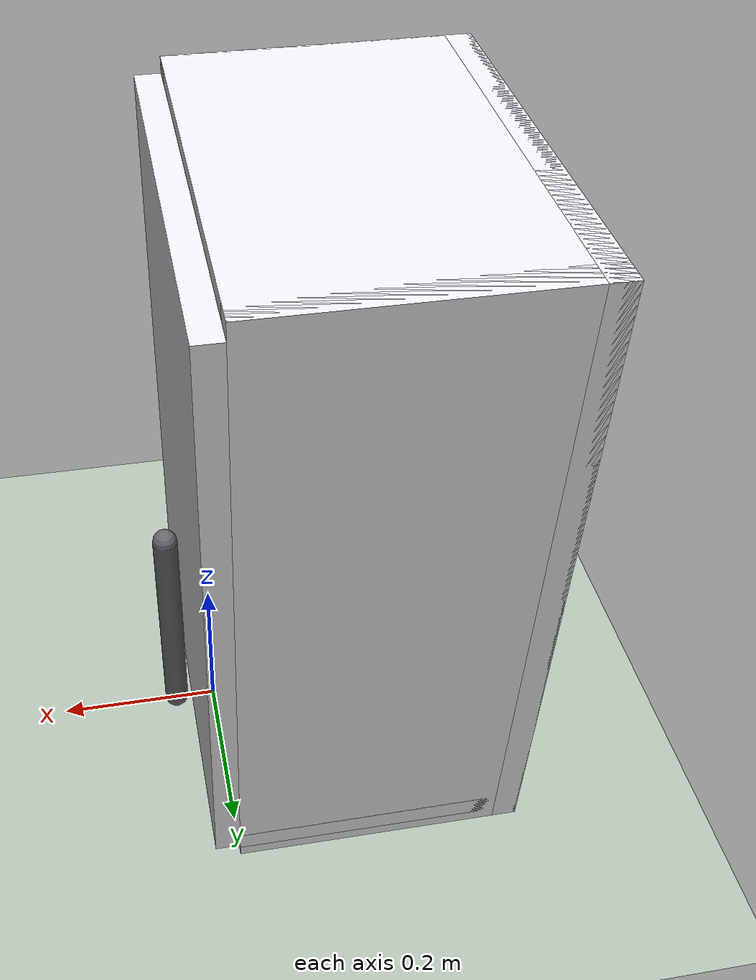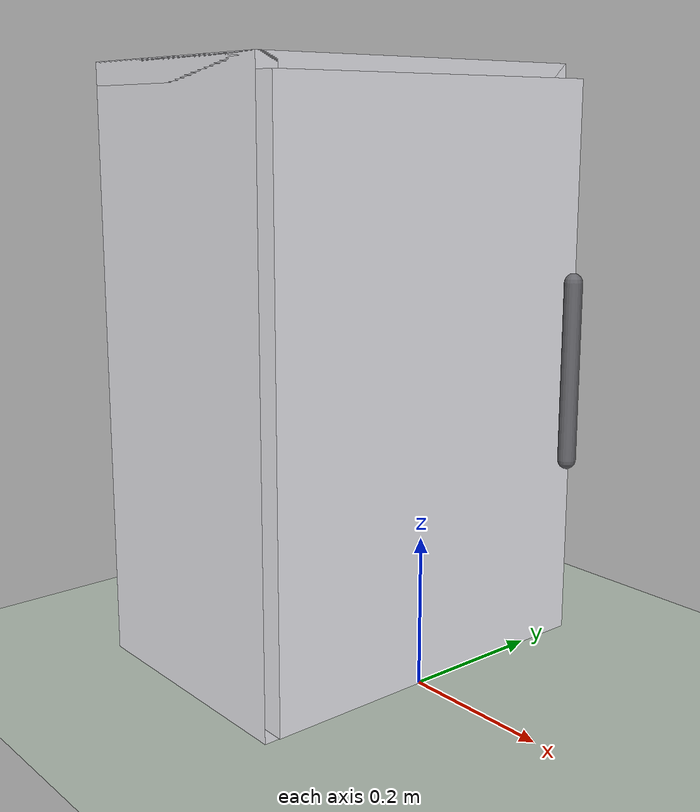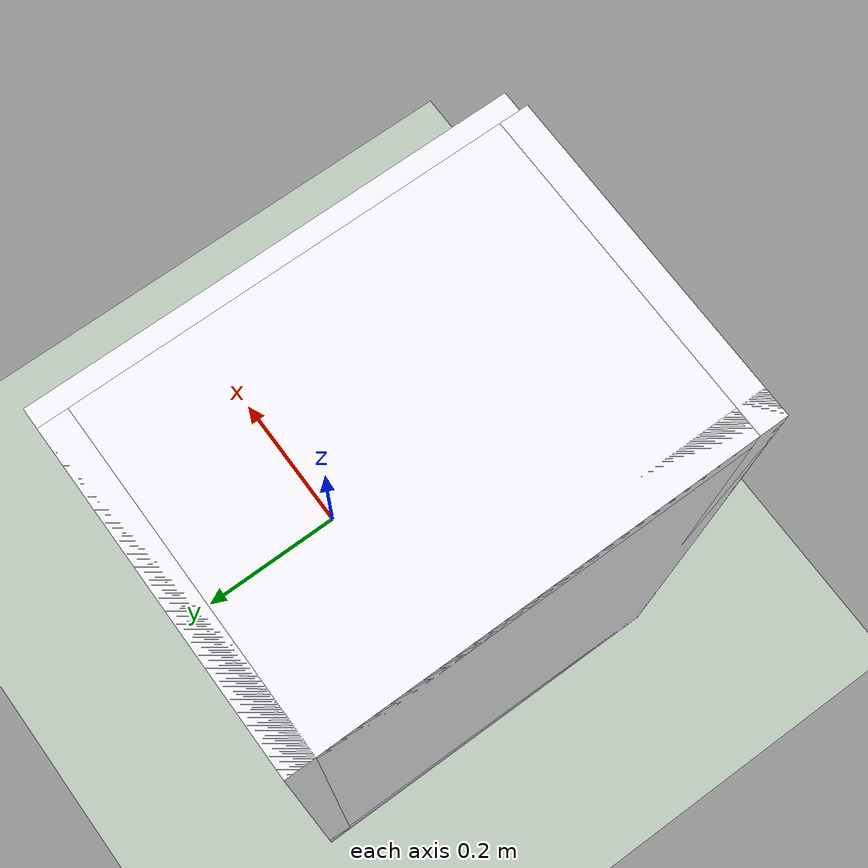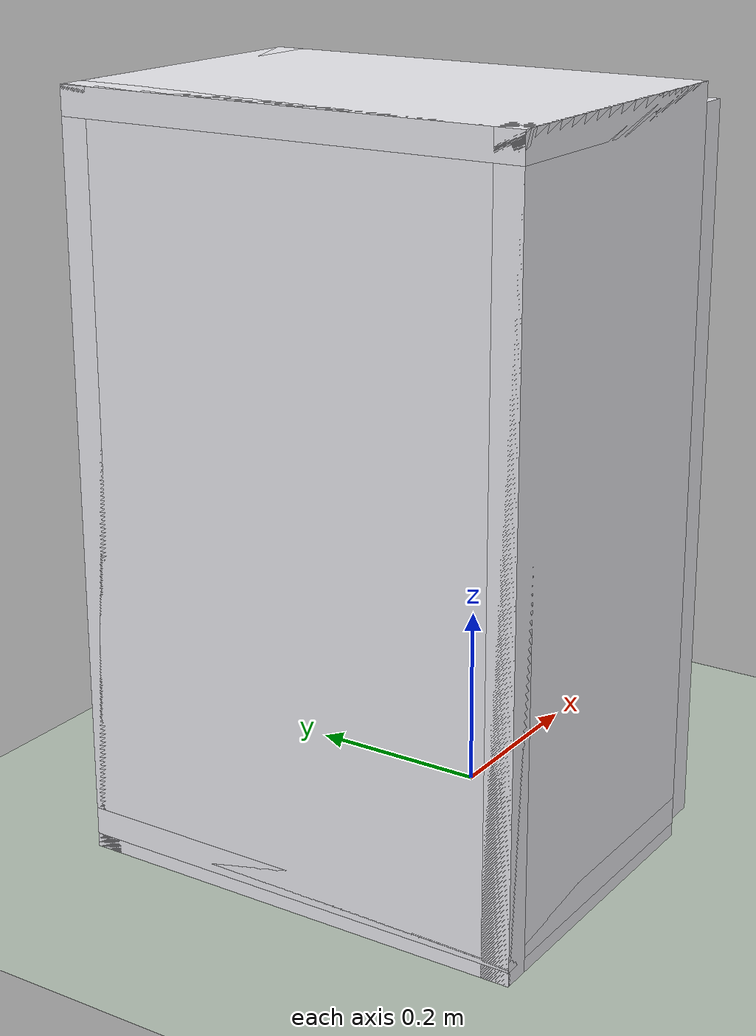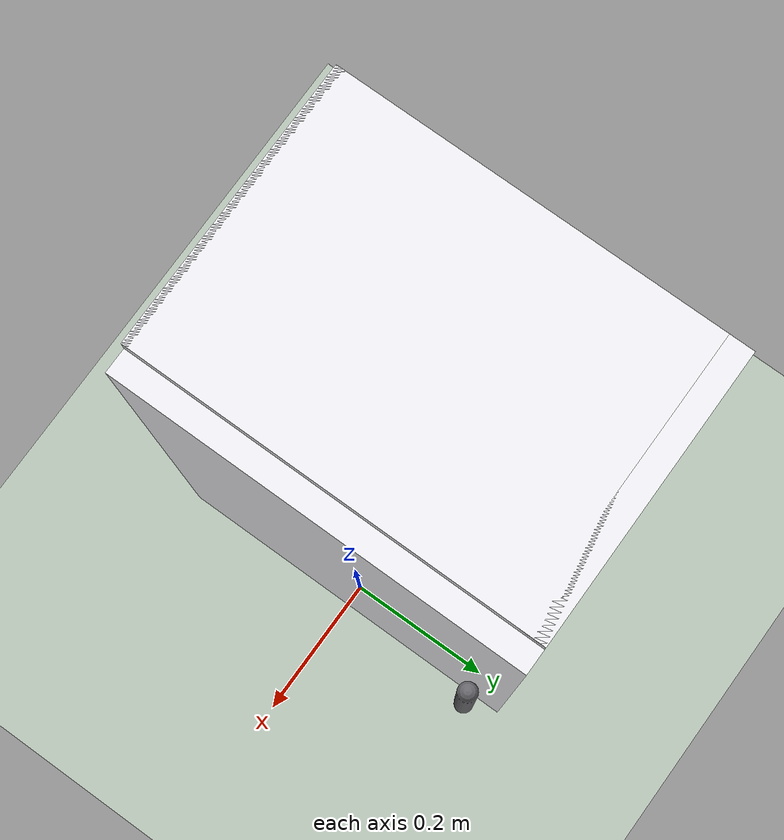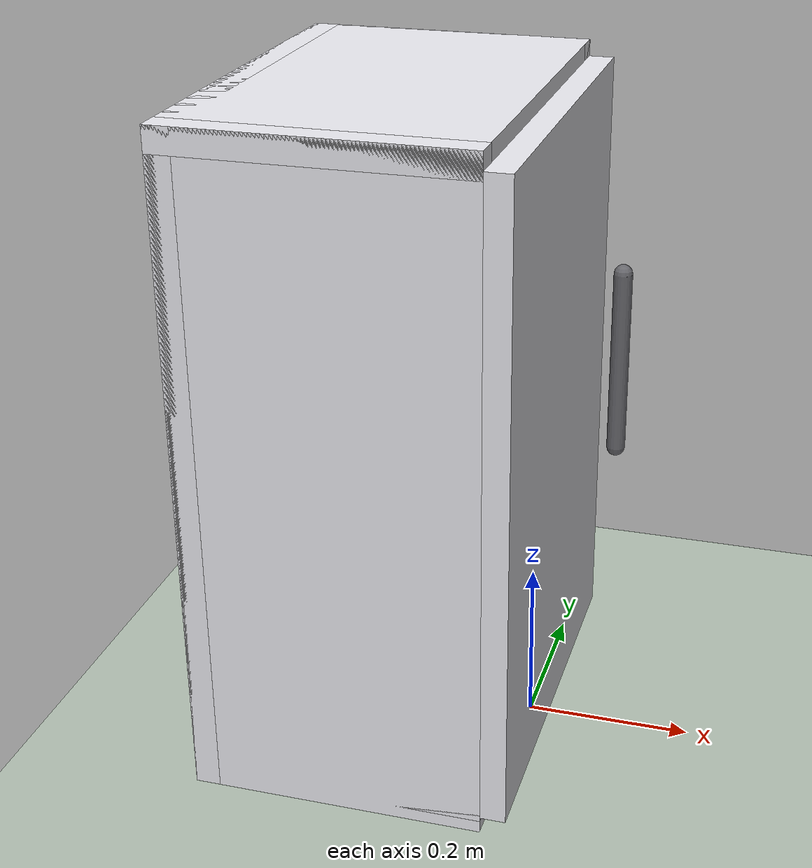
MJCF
<mujoco model="Magnetic fridge door">

  <option cone="elliptic"/>

  <statistic center="0 0 .4" extent="1.4" meansize="0.03"/>

  <visual>
    <headlight diffuse=".8 .8 .8" ambient=".3 .3 .3"/>
    <map stiffness="30"/>
  </visual>

  <asset>
    <texture type="skybox" builtin="gradient" rgb1=".5 .6 .7" rgb2=".9 .9 .95"
             width="32" height="512"/>
    <material name="body" rgba=".92 .92 .94 1" reflectance=".3"/>
    <material name="inside" rgba=".8 .8 .82 1"/>
    <material name="magnet" rgba=".2 .2 .22 1"/>
  </asset>

  <worldbody>
    <light pos="1.5 -.5 2" dir="-.6 .2 -.75" diffuse=".7 .7 .7" intensity="200000"/>
    <geom name="floor" type="plane" size="2 2 .01" rgba=".7 .75 .7 1"/>

    <!-- cabinet: interior x [-.35 0], y [-.25 .25], z [0 .8] -->
    <geom name="left"   type="box" size=".175 .015 .4"  pos="-.175 -.235 .4" material="body"/>
    <geom name="right"  type="box" size=".175 .015 .4"  pos="-.175 .235 .4"  material="body"/>
    <geom name="top"    type="box" size=".175 .25 .015" pos="-.175 0 .785"   material="body"/>
    <geom name="bottom" type="box" size=".175 .25 .015" pos="-.175 0 .03"    material="body"/>
    <geom name="back"   type="box" size=".015 .25 .4"   pos="-.335 0 .4"     material="body"/>
    <geom name="shelf"  type="box" size=".155 .21 .008" pos="-.18 0 .4"      material="inside"/>

    <!-- frame magnet strip, just inside the right wall's front edge -->
    <geom name="magnet1" type="box" size=".005 .01 .3" pos="-.015 .19 .4"
          material="magnet" adhesion="1.5" gap=".01"/>

    <body name="door" pos="0 -.25 .4">
      <joint name="hinge" type="hinge" axis="0 0 -1" range="0 135" damping=".04" stiffness="0.05"/>
      <geom name="panel" type="box" size=".015 .25 .38" pos=".015 .25 0"
            material="body" mass="1.5"/>
      <body name="handle">
        <geom name="handle" type="capsule" size=".012" fromto=".06 .46 -.12 .06 .46 .12" rgba=".4 .4 .42 1" mass=".1"/>
      </body>
      <geom name="magnet2" type="box" size=".005 .01 .3" pos="-.005 .44 0"
            material="magnet" adhesion="1.5" gap=".01" mass=".05"/>
    </body>
  </worldbody>

  <keyframe>
    <key name="open" qpos="1.6"/>
    <key name="ajar" qpos=".006"/>
  </keyframe>
</mujoco>
